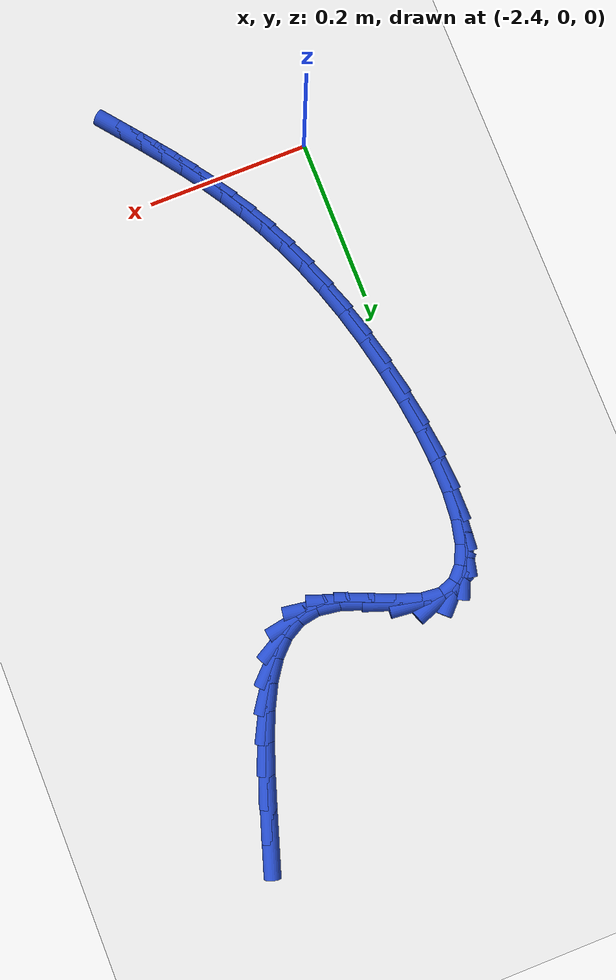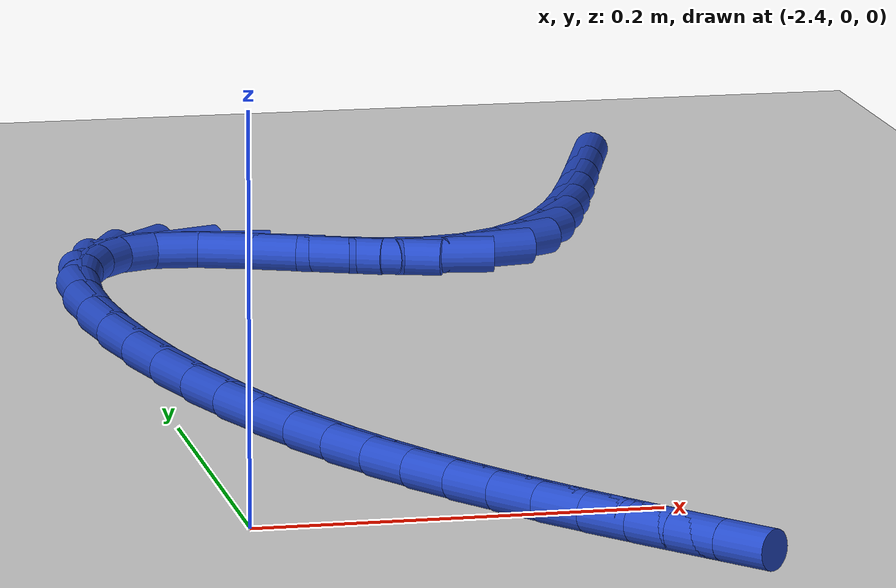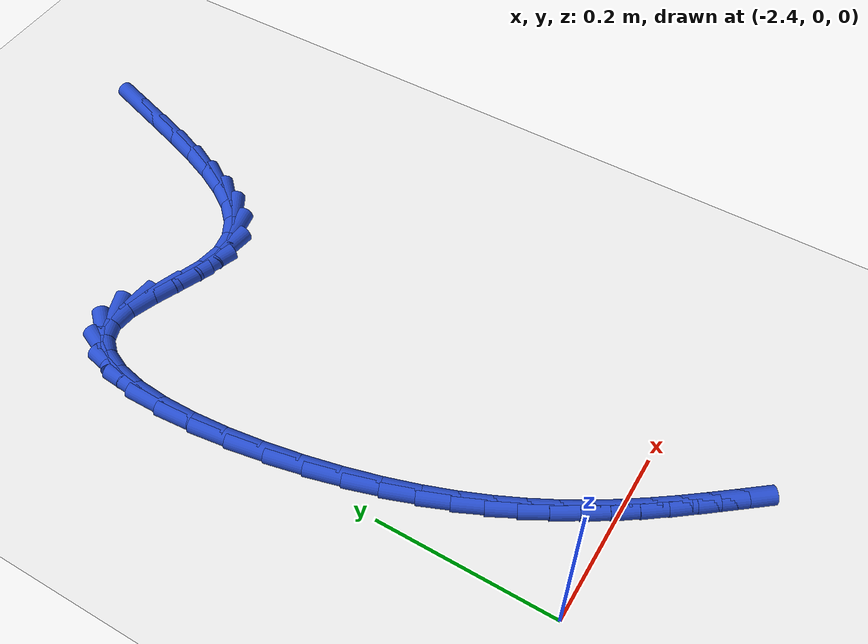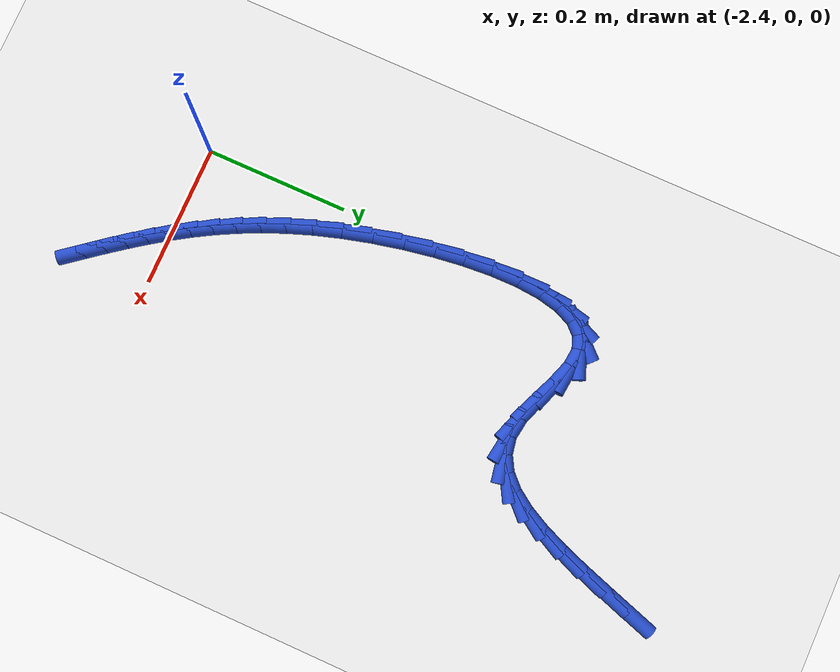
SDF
<sdf version="1.6">
 <world name="default">
  <model name="ground_plane">
   <static>1</static>
   <link name="link">
    <collision name="collision">
     <geometry><plane><normal>0 0 1</normal><size>100 100</size></plane></geometry>
     <surface><friction><ode><mu>100</mu><mu2>50</mu2></ode></friction></surface>
    </collision>
    <visual name="visual">
     <cast_shadows>0</cast_shadows>
     <geometry><plane><normal>0 0 1</normal><size>100 100</size></plane></geometry>
     <material>
      <script><uri>file://media/materials/scripts/gazebo.material</uri><name>Gazebo/WhiteGlow</name></script>
     </material>
    </visual>
   </link>
  </model>
  <model name="line">
   <link name="link_105">
    <pose>-2.0612676516988078 0.7560793828084175 0.01 0 1.57 1.2570408727023374</pose>
    <collision name="collision">
     <geometry><cylinder><radius>0.01</radius><length>0.08</length></cylinder></geometry>
    </collision>
    <visual name="visual">
     <material>
      <script><name>Gazebo/Blue</name><uri>file://media/materials/scripts/gazebo.material</uri></script>
     </material>
     <geometry><cylinder><radius>0.01</radius><length>0.08</length></cylinder></geometry>
    </visual>
   </link>
   <link name="link_106">
    <pose>-2.0733832470239886 0.7187401167537721 0.01 0 1.57 1.2503740741767173</pose>
    <collision name="collision">
     <geometry><cylinder><radius>0.01</radius><length>0.08</length></cylinder></geometry>
    </collision>
    <visual name="visual">
     <material>
      <script><name>Gazebo/Blue</name><uri>file://media/materials/scripts/gazebo.material</uri></script>
     </material>
     <geometry><cylinder><radius>0.01</radius><length>0.08</length></cylinder></geometry>
    </visual>
   </link>
   <link name="link_107">
    <pose>-2.085562663256905 0.6820394413018318 0.01 0 1.57 1.2241991888541486</pose>
    <collision name="collision">
     <geometry><cylinder><radius>0.01</radius><length>0.08</length></cylinder></geometry>
    </collision>
    <visual name="visual">
     <material>
      <script><name>Gazebo/Blue</name><uri>file://media/materials/scripts/gazebo.material</uri></script>
     </material>
     <geometry><cylinder><radius>0.01</radius><length>0.08</length></cylinder></geometry>
    </visual>
   </link>
   <link name="link_108">
    <pose>-2.098228525577547 0.6469711427979931 0.01 0 1.57 1.1744991787243295</pose>
    <collision name="collision">
     <geometry><cylinder><radius>0.01</radius><length>0.08</length></cylinder></geometry>
    </collision>
    <visual name="visual">
     <material>
      <script><name>Gazebo/Blue</name><uri>file://media/materials/scripts/gazebo.material</uri></script>
     </material>
     <geometry><cylinder><radius>0.01</radius><length>0.08</length></cylinder></geometry>
    </visual>
   </link>
   <link name="link_109">
    <pose>-2.1118034591659036 0.614529007587651 0.01 0 1.57 1.0934891838850425</pose>
    <collision name="collision">
     <geometry><cylinder><radius>0.01</radius><length>0.08</length></cylinder></geometry>
    </collision>
    <visual name="visual">
     <material>
      <script><name>Gazebo/Blue</name><uri>file://media/materials/scripts/gazebo.material</uri></script>
     </material>
     <geometry><cylinder><radius>0.01</radius><length>0.08</length></cylinder></geometry>
    </visual>
   </link>
   <link name="link_110">
    <pose>-2.1267100892019677 0.5857068220162028 0.01 0 1.57 0.968014276247881</pose>
    <collision name="collision">
     <geometry><cylinder><radius>0.01</radius><length>0.08</length></cylinder></geometry>
    </collision>
    <visual name="visual">
     <material>
      <script><name>Gazebo/Blue</name><uri>file://media/materials/scripts/gazebo.material</uri></script>
     </material>
     <geometry><cylinder><radius>0.01</radius><length>0.08</length></cylinder></geometry>
    </visual>
   </link>
   <link name="link_111">
    <pose>-2.1433710408657274 0.5614983724290442 0.01 0 1.57 0.7790686900547636</pose>
    <collision name="collision">
     <geometry><cylinder><radius>0.01</radius><length>0.08</length></cylinder></geometry>
    </collision>
    <visual name="visual">
     <material>
      <script><name>Gazebo/Blue</name><uri>file://media/materials/scripts/gazebo.material</uri></script>
     </material>
     <geometry><cylinder><radius>0.01</radius><length>0.08</length></cylinder></geometry>
    </visual>
   </link>
   <link name="link_112">
    <pose>-2.162208939337173 0.5428974451715716 0.01 0 1.57 0.5102977893418454</pose>
    <collision name="collision">
     <geometry><cylinder><radius>0.01</radius><length>0.08</length></cylinder></geometry>
    </collision>
    <visual name="visual">
     <material>
      <script><name>Gazebo/Blue</name><uri>file://media/materials/scripts/gazebo.material</uri></script>
     </material>
     <geometry><cylinder><radius>0.01</radius><length>0.08</length></cylinder></geometry>
    </visual>
   </link>
   <link name="link_113">
    <pose>-2.183646409796296 0.5308978265891812 0.01 0 1.57 0.17816356056038118</pose>
    <collision name="collision">
     <geometry><cylinder><radius>0.01</radius><length>0.08</length></cylinder></geometry>
    </collision>
    <visual name="visual">
     <material>
      <script><name>Gazebo/Blue</name><uri>file://media/materials/scripts/gazebo.material</uri></script>
     </material>
     <geometry><cylinder><radius>0.01</radius><length>0.08</length></cylinder></geometry>
    </visual>
   </link>
   <link name="link_114">
    <pose>-2.2081060774230847 0.526493303027269 0.01 0 1.57 -0.14560420886143113</pose>
    <collision name="collision">
     <geometry><cylinder><radius>0.01</radius><length>0.08</length></cylinder></geometry>
    </collision>
    <visual name="visual">
     <material>
      <script><name>Gazebo/Blue</name><uri>file://media/materials/scripts/gazebo.material</uri></script>
     </material>
     <geometry><cylinder><radius>0.01</radius><length>0.08</length></cylinder></geometry>
    </visual>
   </link>
   <link name="link_115">
    <pose>-2.2359653345367088 0.5305786395147972 0.01 0 1.57 -0.3411292893565607</pose>
    <collision name="collision">
     <geometry><cylinder><radius>0.01</radius><length>0.08</length></cylinder></geometry>
    </collision>
    <visual name="visual">
     <material>
      <script><name>Gazebo/Blue</name><uri>file://media/materials/scripts/gazebo.material</uri></script>
     </material>
     <geometry><cylinder><radius>0.01</radius><length>0.08</length></cylinder></geometry>
    </visual>
   </link>
   <link name="link_116">
    <pose>-2.2663809211932824 0.5413764155986981 0.01 0 1.57 -0.39446650848172865</pose>
    <collision name="collision">
     <geometry><cylinder><radius>0.01</radius><length>0.08</length></cylinder></geometry>
    </collision>
    <visual name="visual">
     <material>
      <script><name>Gazebo/Blue</name><uri>file://media/materials/scripts/gazebo.material</uri></script>
     </material>
     <geometry><cylinder><radius>0.01</radius><length>0.08</length></cylinder></geometry>
    </visual>
   </link>
   <link name="link_117">
    <pose>-2.297179470340588 0.554197412755318 0.01 0 1.57 -0.3329331459593168</pose>
    <collision name="collision">
     <geometry><cylinder><radius>0.01</radius><length>0.08</length></cylinder></geometry>
    </collision>
    <visual name="visual">
     <material>
      <script><name>Gazebo/Blue</name><uri>file://media/materials/scripts/gazebo.material</uri></script>
     </material>
     <geometry><cylinder><radius>0.01</radius><length>0.08</length></cylinder></geometry>
    </visual>
   </link>
   <link name="link_118">
    <pose>-2.3261204404783906 0.5642053578163735 0.01 0 1.57 -0.09780128690900203</pose>
    <collision name="collision">
     <geometry><cylinder><radius>0.01</radius><length>0.08</length></cylinder></geometry>
    </collision>
    <visual name="visual">
     <material>
      <script><name>Gazebo/Blue</name><uri>file://media/materials/scripts/gazebo.material</uri></script>
     </material>
     <geometry><cylinder><radius>0.01</radius><length>0.08</length></cylinder></geometry>
    </visual>
   </link>
   <link name="link_119">
    <pose>-2.3509991535097488 0.5666463155964815 0.01 0 1.57 0.3510439480519838</pose>
    <collision name="collision">
     <geometry><cylinder><radius>0.01</radius><length>0.08</length></cylinder></geometry>
    </collision>
    <visual name="visual">
     <material>
      <script><name>Gazebo/Blue</name><uri>file://media/materials/scripts/gazebo.material</uri></script>
     </material>
     <geometry><cylinder><radius>0.01</radius><length>0.08</length></cylinder></geometry>
    </visual>
   </link>
   <link name="link_120">
    <pose>-2.3707619476023707 0.5594089433251759 0.01 0 1.57 0.8153757313475437</pose>
    <collision name="collision">
     <geometry><cylinder><radius>0.01</radius><length>0.08</length></cylinder></geometry>
    </collision>
    <visual name="visual">
     <material>
      <script><name>Gazebo/Blue</name><uri>file://media/materials/scripts/gazebo.material</uri></script>
     </material>
     <geometry><cylinder><radius>0.01</radius><length>0.08</length></cylinder></geometry>
    </visual>
   </link>
   <link name="link_121">
    <pose>-2.3857231797135428 0.5435227018746578 0.01 0 1.57 1.145859691000147</pose>
    <collision name="collision">
     <geometry><cylinder><radius>0.01</radius><length>0.08</length></cylinder></geometry>
    </collision>
    <visual name="visual">
     <material>
      <script><name>Gazebo/Blue</name><uri>file://media/materials/scripts/gazebo.material</uri></script>
     </material>
     <geometry><cylinder><radius>0.01</radius><length>0.08</length></cylinder></geometry>
    </visual>
   </link>
   <link name="link_122">
    <pose>-2.3962768769739484 0.5201999650805552 0.01 0 1.57 1.3529589541764322</pose>
    <collision name="collision">
     <geometry><cylinder><radius>0.01</radius><length>0.08</length></cylinder></geometry>
    </collision>
    <visual name="visual">
     <material>
      <script><name>Gazebo/Blue</name><uri>file://media/materials/scripts/gazebo.material</uri></script>
     </material>
     <geometry><cylinder><radius>0.01</radius><length>0.08</length></cylinder></geometry>
    </visual>
   </link>
   <link name="link_123">
    <pose>-2.4028170665142703 0.49065310677849633 0.01 0 1.57 1.486482027183626</pose>
    <collision name="collision">
     <geometry><cylinder><radius>0.01</radius><length>0.08</length></cylinder></geometry>
    </collision>
    <visual name="visual">
     <material>
      <script><name>Gazebo/Blue</name><uri>file://media/materials/scripts/gazebo.material</uri></script>
     </material>
     <geometry><cylinder><radius>0.01</radius><length>0.08</length></cylinder></geometry>
    </visual>
   </link>
   <link name="link_124">
    <pose>-2.405737775465193 0.45609450080410996 0.01 0 1.57 -1.5628517453072714</pose>
    <collision name="collision">
     <geometry><cylinder><radius>0.01</radius><length>0.08</length></cylinder></geometry>
    </collision>
    <visual name="visual">
     <material>
      <script><name>Gazebo/Blue</name><uri>file://media/materials/scripts/gazebo.material</uri></script>
     </material>
     <geometry><cylinder><radius>0.01</radius><length>0.08</length></cylinder></geometry>
    </visual>
   </link>
   <link name="link_125">
    <pose>-2.4054330309574 0.41773652099302305 0.01 0 1.57 -1.494350830959944</pose>
    <collision name="collision">
     <geometry><cylinder><radius>0.01</radius><length>0.08</length></cylinder></geometry>
    </collision>
    <visual name="visual">
     <material>
      <script><name>Gazebo/Blue</name><uri>file://media/materials/scripts/gazebo.material</uri></script>
     </material>
     <geometry><cylinder><radius>0.01</radius><length>0.08</length></cylinder></geometry>
    </visual>
   </link>
   <link name="link_126">
    <pose>-2.4022968601215737 0.376791541180864 0.01 0 1.57 -1.4398481300997918</pose>
    <collision name="collision">
     <geometry><cylinder><radius>0.01</radius><length>0.08</length></cylinder></geometry>
    </collision>
    <visual name="visual">
     <material>
      <script><name>Gazebo/Blue</name><uri>file://media/materials/scripts/gazebo.material</uri></script>
     </material>
     <geometry><cylinder><radius>0.01</radius><length>0.08</length></cylinder></geometry>
    </visual>
   </link>
   <link name="link_127">
    <pose>-2.3967232900884 0.33447193520326124 0.01 0 1.57 -1.3933827594959565</pose>
    <collision name="collision">
     <geometry><cylinder><radius>0.01</radius><length>0.08</length></cylinder></geometry>
    </collision>
    <visual name="visual">
     <material>
      <script><name>Gazebo/Blue</name><uri>file://media/materials/scripts/gazebo.material</uri></script>
     </material>
     <geometry><cylinder><radius>0.01</radius><length>0.08</length></cylinder></geometry>
    </visual>
   </link>
   <link name="link_128">
    <pose>-2.3891063479885606 0.29199007689584267 0.01 0 1.57 -1.3507653865570508</pose>
    <collision name="collision">
     <geometry><cylinder><radius>0.01</radius><length>0.08</length></cylinder></geometry>
    </collision>
    <visual name="visual">
     <material>
      <script><name>Gazebo/Blue</name><uri>file://media/materials/scripts/gazebo.material</uri></script>
     </material>
     <geometry><cylinder><radius>0.01</radius><length>0.08</length></cylinder></geometry>
    </visual>
   </link>
   <link name="link_129">
    <pose>-2.37984006095274 0.2505583400942365 0.01 0 1.57 -1.3084088116859447</pose>
    <collision name="collision">
     <geometry><cylinder><radius>0.01</radius><length>0.08</length></cylinder></geometry>
    </collision>
    <visual name="visual">
     <material>
      <script><name>Gazebo/Blue</name><uri>file://media/materials/scripts/gazebo.material</uri></script>
     </material>
     <geometry><cylinder><radius>0.01</radius><length>0.08</length></cylinder></geometry>
    </visual>
   </link>
   <link name="link_130">
    <pose>-2.369311894583601 0.21135891983763846 0.01 0 1.57 -1.2640784018285764</pose>
    <collision name="collision">
     <geometry><cylinder><radius>0.01</radius><length>0.08</length></cylinder></geometry>
    </collision>
    <visual name="visual">
     <material>
      <script><name>Gazebo/Blue</name><uri>file://media/materials/scripts/gazebo.material</uri></script>
     </material>
     <geometry><cylinder><radius>0.01</radius><length>0.08</length></cylinder></geometry>
    </visual>
   </link>
   <link name="link_131">
    <pose>-2.357758103028605 0.17487853600904502 0.01 0 1.57 -1.218351418493731</pose>
    <collision name="collision">
     <geometry><cylinder><radius>0.01</radius><length>0.08</length></cylinder></geometry>
    </collision>
    <visual name="visual">
     <material>
      <script><name>Gazebo/Blue</name><uri>file://media/materials/scripts/gazebo.material</uri></script>
     </material>
     <geometry><cylinder><radius>0.01</radius><length>0.08</length></cylinder></geometry>
    </visual>
   </link>
   <link name="link_132">
    <pose>-2.34526356417951 0.1409076753592583 0.01 0 1.57 -1.1720290863942335</pose>
    <collision name="collision">
     <geometry><cylinder><radius>0.01</radius><length>0.08</length></cylinder></geometry>
    </collision>
    <visual name="visual">
     <material>
      <script><name>Gazebo/Blue</name><uri>file://media/materials/scripts/gazebo.material</uri></script>
     </material>
     <geometry><cylinder><radius>0.01</radius><length>0.08</length></cylinder></geometry>
    </visual>
   </link>
   <link name="link_133">
    <pose>-2.3319065614399426 0.1092064942473933 0.01 0 1.57 -1.126048284608498</pose>
    <collision name="collision">
     <geometry><cylinder><radius>0.01</radius><length>0.08</length></cylinder></geometry>
    </collision>
    <visual name="visual">
     <material>
      <script><name>Gazebo/Blue</name><uri>file://media/materials/scripts/gazebo.material</uri></script>
     </material>
     <geometry><cylinder><radius>0.01</radius><length>0.08</length></cylinder></geometry>
    </visual>
   </link>
   <link name="link_134">
    <pose>-2.317765378213529 0.07953514903256344 0.01 0 1.57 -1.0814807527635057</pose>
    <collision name="collision">
     <geometry><cylinder><radius>0.01</radius><length>0.08</length></cylinder></geometry>
    </collision>
    <visual name="visual">
     <material>
      <script><name>Gazebo/Blue</name><uri>file://media/materials/scripts/gazebo.material</uri></script>
     </material>
     <geometry><cylinder><radius>0.01</radius><length>0.08</length></cylinder></geometry>
    </visual>
   </link>
   <link name="link_135">
    <pose>-2.302918297903895 0.051653796073883665 0.01 0 1.57 -1.0394744087513288</pose>
    <collision name="collision">
     <geometry><cylinder><radius>0.01</radius><length>0.08</length></cylinder></geometry>
    </collision>
    <visual name="visual">
     <material>
      <script><name>Gazebo/Blue</name><uri>file://media/materials/scripts/gazebo.material</uri></script>
     </material>
     <geometry><cylinder><radius>0.01</radius><length>0.08</length></cylinder></geometry>
    </visual>
   </link>
   <link name="link_136">
    <pose>-2.2874436039146664 0.02532259173046843 0.01 0 1.57 -1.0011812708085372</pose>
    <collision name="collision">
     <geometry><cylinder><radius>0.01</radius><length>0.08</length></cylinder></geometry>
    </collision>
    <visual name="visual">
     <material>
      <script><name>Gazebo/Blue</name><uri>file://media/materials/scripts/gazebo.material</uri></script>
     </material>
     <geometry><cylinder><radius>0.01</radius><length>0.08</length></cylinder></geometry>
    </visual>
   </link>
   <link name="link_137">
    <pose>-2.2714195796494696 0.0003016923614322011 0.01 0 1.57 -0.9676831285415876</pose>
    <collision name="collision">
     <geometry><cylinder><radius>0.01</radius><length>0.08</length></cylinder></geometry>
    </collision>
    <visual name="visual">
     <material>
      <script><name>Gazebo/Blue</name><uri>file://media/materials/scripts/gazebo.material</uri></script>
     </material>
     <geometry><cylinder><radius>0.01</radius><length>0.08</length></cylinder></geometry>
    </visual>
   </link>
   <link name="link_138">
    <pose>-2.2549245085119303 -0.02364874567411056 0.01 0 1.57 -0.9399261476301438</pose>
    <collision name="collision">
     <geometry><cylinder><radius>0.01</radius><length>0.08</length></cylinder></geometry>
    </collision>
    <visual name="visual">
     <material>
      <script><name>Gazebo/Blue</name><uri>file://media/materials/scripts/gazebo.material</uri></script>
     </material>
     <geometry><cylinder><radius>0.01</radius><length>0.08</length></cylinder></geometry>
    </visual>
   </link>
   <link name="link_139">
    <pose>-2.238036673905676 -0.04676856601704549 0.01 0 1.57 -0.9186721405446789</pose>
    <collision name="collision">
     <geometry><cylinder><radius>0.01</radius><length>0.08</length></cylinder></geometry>
    </collision>
    <visual name="visual">
     <material>
      <script><name>Gazebo/Blue</name><uri>file://media/materials/scripts/gazebo.material</uri></script>
     </material>
     <geometry><cylinder><radius>0.01</radius><length>0.08</length></cylinder></geometry>
    </visual>
   </link>
   <link name="link_140">
    <pose>-2.220834359234331 -0.06929761230825766 0.01 0 1.57 -0.9044689811314708</pose>
    <collision name="collision">
     <geometry><cylinder><radius>0.01</radius><length>0.08</length></cylinder></geometry>
    </collision>
    <visual name="visual">
     <material>
      <script><name>Gazebo/Blue</name><uri>file://media/materials/scripts/gazebo.material</uri></script>
     </material>
     <geometry><cylinder><radius>0.01</radius><length>0.08</length></cylinder></geometry>
    </visual>
   </link>
   <link name="link_141">
    <pose>-2.2033958479015223 -0.09147572818863343 0.01 0 1.57 -0.8976378984835542</pose>
    <collision name="collision">
     <geometry><cylinder><radius>0.01</radius><length>0.08</length></cylinder></geometry>
    </collision>
    <visual name="visual">
     <material>
      <script><name>Gazebo/Blue</name><uri>file://media/materials/scripts/gazebo.material</uri></script>
     </material>
     <geometry><cylinder><radius>0.01</radius><length>0.08</length></cylinder></geometry>
    </visual>
   </link>
  </model>
 </world>
</sdf>
